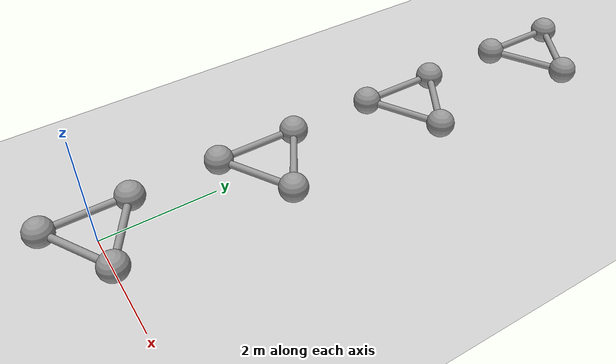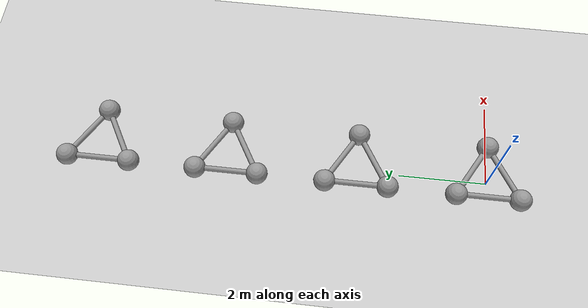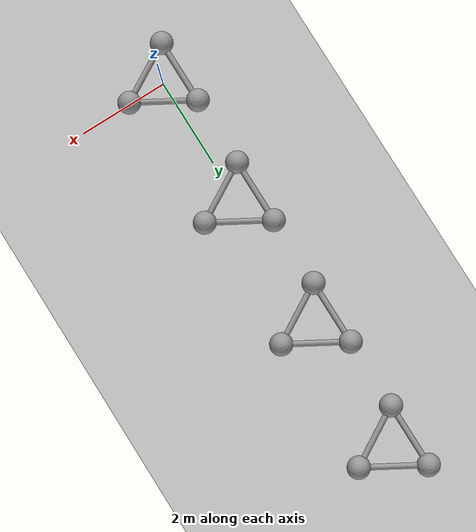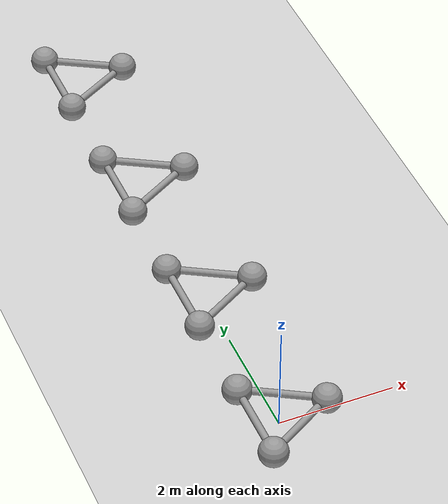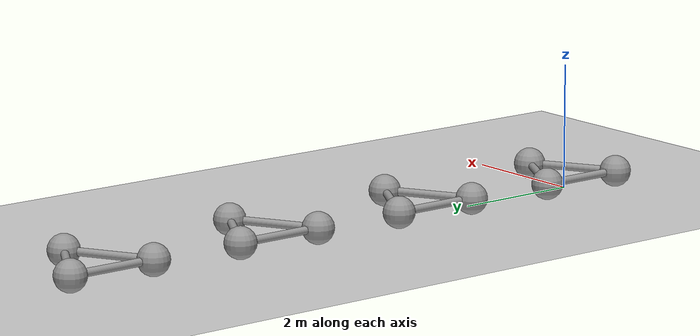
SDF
<?xml version="1.0" ?>

<sdf version="1.6">
  <world name="default">
    <gravity>1 0 -9.8</gravity>

    <include>
      <uri>model://ground_plane</uri>
    </include>
    <include>
      <uri>model://sun</uri>
    </include>

    <include>
      <uri>model://triball_lumped</uri>
      <pose>0 0 0  0 0 0</pose>
    </include>

    <include>
      <uri>model://triball_fixed</uri>
      <pose>0 3 0  0 0 0</pose>
    </include>

    <include>
      <uri>model://triball_revolute</uri>
      <pose>0 6 0  0 0 0</pose>
    </include>

    <include>
      <name>triball_wheel_slip</name>
      <uri>model://triball_revolute</uri>
      <pose>0 9 0  0 0 0</pose>
      <plugin name="wheel_slip" filename="libWheelSlipPlugin.so">
        <wheel link_name="link_a">
          <slip_compliance_lateral>1</slip_compliance_lateral>
          <slip_compliance_longitudinal>1</slip_compliance_longitudinal>
          <wheel_normal_force>25</wheel_normal_force>
        </wheel>
        <wheel link_name="link_b">
          <slip_compliance_lateral>1</slip_compliance_lateral>
          <slip_compliance_longitudinal>1</slip_compliance_longitudinal>
          <wheel_normal_force>25</wheel_normal_force>
        </wheel>
        <wheel link_name="link_c">
          <slip_compliance_lateral>1</slip_compliance_lateral>
          <slip_compliance_longitudinal>1</slip_compliance_longitudinal>
          <wheel_normal_force>25</wheel_normal_force>
        </wheel>
      </plugin>
    </include>
    <gui fullscreen='0'>
      <camera name='user_camera'>
        <pose>1.5 -4 2.5  0 0.5 1.6</pose>
        <view_controller>orbit</view_controller>
      </camera>
    </gui>
  </world>
</sdf>

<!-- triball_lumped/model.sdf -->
<sdf version="1.5">
  <model name="triball_lumped">
    <allow_auto_disable>false</allow_auto_disable>
    <link name="link">
      <pose>0 0 0.25  0 0 0</pose>
      <inertial>
        <pose>0.0 0.0 0  0 0 0</pose>
        <mass>7.911</mass>
        <inertia>
          <ixx>2.9446500000000007</ixx>
          <iyy>2.944649999999999</iyy>
          <izz>5.691525</izz>
          <ixy>0.0</ixy>
          <ixz>0.0</ixz>
          <iyz>0.0</iyz>
        </inertia>
      </inertial>
      <sensor name="imu" type="imu">
        <always_on>true</always_on>
      </sensor>

      <collision name="collision_a">
        <pose>0.8333333333333333 0 0  0 0 0</pose>
        <geometry>
          <sphere>
            <radius>0.25</radius>
          </sphere>
        </geometry>
        <surface>
          <friction>
            <ode>
              <mu>0.9</mu>
              <mu2>0.9</mu2>
              <fdir1>1 0 0</fdir1>
            </ode>
          </friction>
        </surface>
      </collision>
      <visual name="visual_a">
        <pose>0.8333333333333333 0 0  0 0 0</pose>
        <geometry>
          <sphere>
            <radius>0.25</radius>
          </sphere>
        </geometry>
        <material>
          <script>
            <uri>file://media/materials/scripts/gazebo.material</uri>
            <name>Gazebo/Grey</name>
          </script>
        </material>
      </visual>

      <collision name="collision_a_to_b">
        <pose>0.20833333333333331 0.36084391824351614 0.0  -1.5707962969925737 -1.0471975511965974 1.047197525387029</pose>
        <geometry>
          <cylinder>
            <radius>0.0625</radius>
            <length>1.4433756729740645</length>
          </cylinder>
        </geometry>
        <surface>
          <friction>
            <ode>
              <mu>0.9</mu>
              <mu2>0.9</mu2>
            </ode>
          </friction>
        </surface>
      </collision>
      <visual name="visual_a_to_b">
        <pose>0.20833333333333331 0.36084391824351614 0.0  -1.5707962969925737 -1.0471975511965974 1.047197525387029</pose>
        <geometry>
          <cylinder>
            <radius>0.0625</radius>
            <length>1.4433756729740645</length>
          </cylinder>
        </geometry>
        <material>
          <script>
            <uri>file://media/materials/scripts/gazebo.material</uri>
            <name>Gazebo/Grey</name>
          </script>
        </material>
      </visual>

      <collision name="collision_a_to_c">
        <pose>0.20833333333333331 -0.36084391824351614 0.0  1.5707962969925737 -1.0471975511965974 -1.047197525387029</pose>
        <geometry>
          <cylinder>
            <radius>0.0625</radius>
            <length>1.4433756729740645</length>
          </cylinder>
        </geometry>
        <surface>
          <friction>
            <ode>
              <mu>0.9</mu>
              <mu2>0.9</mu2>
            </ode>
          </friction>
        </surface>
      </collision>
      <visual name="visual_a_to_c">
        <pose>0.20833333333333331 -0.36084391824351614 0.0  1.5707962969925737 -1.0471975511965974 -1.047197525387029</pose>
        <geometry>
          <cylinder>
            <radius>0.0625</radius>
            <length>1.4433756729740645</length>
          </cylinder>
        </geometry>
        <material>
          <script>
            <uri>file://media/materials/scripts/gazebo.material</uri>
            <name>Gazebo/Grey</name>
          </script>
        </material>
      </visual>

      <collision name="collision_b">
        <pose>-0.41666666666666663 0.7216878364870323 0  0 0 0</pose>
        <geometry>
          <sphere>
            <radius>0.25</radius>
          </sphere>
        </geometry>
        <surface>
          <friction>
            <ode>
              <mu>0.9</mu>
              <mu2>0.9</mu2>
              <fdir1>1 0 0</fdir1>
            </ode>
          </friction>
        </surface>
      </collision>
      <visual name="visual_b">
        <pose>-0.41666666666666663 0.7216878364870323 0  0 0 0</pose>
        <geometry>
          <sphere>
            <radius>0.25</radius>
          </sphere>
        </geometry>
        <material>
          <script>
            <uri>file://media/materials/scripts/gazebo.material</uri>
            <name>Gazebo/Grey</name>
          </script>
        </material>
      </visual>

      <collision name="collision_b_to_c">
        <pose>-0.41666666666666663 0.0 0.0  1.5707963267948963 -0.0 0.0</pose>
        <geometry>
          <cylinder>
            <radius>0.0625</radius>
            <length>1.4433756729740645</length>
          </cylinder>
        </geometry>
        <surface>
          <friction>
            <ode>
              <mu>0.9</mu>
              <mu2>0.9</mu2>
            </ode>
          </friction>
        </surface>
      </collision>
      <visual name="visual_b_to_c">
        <pose>-0.41666666666666663 0.0 0.0  1.5707963267948963 -0.0 0.0</pose>
        <geometry>
          <cylinder>
            <radius>0.0625</radius>
            <length>1.4433756729740645</length>
          </cylinder>
        </geometry>
        <material>
          <script>
            <uri>file://media/materials/scripts/gazebo.material</uri>
            <name>Gazebo/Grey</name>
          </script>
        </material>
      </visual>

      <collision name="collision_c">
        <pose>-0.41666666666666663 -0.7216878364870323 0  0 0 0</pose>
        <geometry>
          <sphere>
            <radius>0.25</radius>
          </sphere>
        </geometry>
        <surface>
          <friction>
            <ode>
              <mu>0.9</mu>
              <mu2>0.9</mu2>
              <fdir1>1 0 0</fdir1>
            </ode>
          </friction>
        </surface>
      </collision>
      <visual name="visual_c">
        <pose>-0.41666666666666663 -0.7216878364870323 0  0 0 0</pose>
        <geometry>
          <sphere>
            <radius>0.25</radius>
          </sphere>
        </geometry>
        <material>
          <script>
            <uri>file://media/materials/scripts/gazebo.material</uri>
            <name>Gazebo/Grey</name>
          </script>
        </material>
      </visual>

    </link>
  </model>
</sdf>

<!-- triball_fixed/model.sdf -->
<sdf version="1.5">
  <model name="triball_fixed">
    <allow_auto_disable>false</allow_auto_disable>
    <link name="chassis">
      <pose>0 0 0.25  0 0 0</pose>
      <inertial>
        <pose>0.0 0.0 0 0 0 0</pose>
        <mass>3.9555</mass>
        <inertia>
          <ixx>1.4723250000000003</ixx>
          <iyy>1.4723249999999994</iyy>
          <izz>2.8457625</izz>
          <ixy>0.0</ixy>
          <ixz>0.0</ixz>
          <iyz>0.0</iyz>
        </inertia>
      </inertial>
      <sensor name="imu" type="imu">
        <always_on>true</always_on>
      </sensor>

      <collision name="collision_a_to_b">
        <pose>0.20833333333333331 0.36084391824351614 0.0  -1.5707962969925737 -1.0471975511965974 1.047197525387029</pose>
        <geometry>
          <cylinder>
            <radius>0.0625</radius>
            <length>1.4433756729740645</length>
          </cylinder>
        </geometry>
        <surface>
          <friction>
            <ode>
              <mu>0.9</mu>
              <mu2>0.9</mu2>
            </ode>
          </friction>
        </surface>
      </collision>
      <visual name="visual_a_to_b">
        <pose>0.20833333333333331 0.36084391824351614 0.0  -1.5707962969925737 -1.0471975511965974 1.047197525387029</pose>
        <geometry>
          <cylinder>
            <radius>0.0625</radius>
            <length>1.4433756729740645</length>
          </cylinder>
        </geometry>
        <material>
          <script>
            <uri>file://media/materials/scripts/gazebo.material</uri>
            <name>Gazebo/Grey</name>
          </script>
        </material>
      </visual>

      <collision name="collision_a_to_c">
        <pose>0.20833333333333331 -0.36084391824351614 0.0  1.5707962969925737 -1.0471975511965974 -1.047197525387029</pose>
        <geometry>
          <cylinder>
            <radius>0.0625</radius>
            <length>1.4433756729740645</length>
          </cylinder>
        </geometry>
        <surface>
          <friction>
            <ode>
              <mu>0.9</mu>
              <mu2>0.9</mu2>
            </ode>
          </friction>
        </surface>
      </collision>
      <visual name="visual_a_to_c">
        <pose>0.20833333333333331 -0.36084391824351614 0.0  1.5707962969925737 -1.0471975511965974 -1.047197525387029</pose>
        <geometry>
          <cylinder>
            <radius>0.0625</radius>
            <length>1.4433756729740645</length>
          </cylinder>
        </geometry>
        <material>
          <script>
            <uri>file://media/materials/scripts/gazebo.material</uri>
            <name>Gazebo/Grey</name>
          </script>
        </material>
      </visual>

      <collision name="collision_b_to_c">
        <pose>-0.41666666666666663 0.0 0.0  1.5707963267948963 -0.0 0.0</pose>
        <geometry>
          <cylinder>
            <radius>0.0625</radius>
            <length>1.4433756729740645</length>
          </cylinder>
        </geometry>
        <surface>
          <friction>
            <ode>
              <mu>0.9</mu>
              <mu2>0.9</mu2>
            </ode>
          </friction>
        </surface>
      </collision>
      <visual name="visual_b_to_c">
        <pose>-0.41666666666666663 0.0 0.0  1.5707963267948963 -0.0 0.0</pose>
        <geometry>
          <cylinder>
            <radius>0.0625</radius>
            <length>1.4433756729740645</length>
          </cylinder>
        </geometry>
        <material>
          <script>
            <uri>file://media/materials/scripts/gazebo.material</uri>
            <name>Gazebo/Grey</name>
          </script>
        </material>
      </visual>

    </link>

    <link name="link_a">
      <pose>0.8333333333333333 0 0.25  0 0 0</pose>
      <inertial>
        <mass>1.3185</mass>
        <inertia>
          <ixx>0.0329625</ixx>
          <iyy>0.0329625</iyy>
          <izz>0.0329625</izz>
          <ixy>0</ixy>
          <ixz>0</ixz>
          <iyz>0</iyz>
        </inertia>
      </inertial>
      <collision name="collision">
        <geometry>
          <sphere>
            <radius>0.25</radius>
          </sphere>
        </geometry>
        <surface>
          <contact>
            <ode>
              <kp>10000000.0</kp>
              <kd>1.0</kd>
            </ode>
          </contact>
          <friction>
            <ode>
              <mu>0.9</mu>
              <mu2>0.9</mu2>
              <fdir1>1 0 0</fdir1>
            </ode>
          </friction>
        </surface>
      </collision>
      <visual name="visual">
        <geometry>
          <sphere>
            <radius>0.25</radius>
          </sphere>
        </geometry>
        <material>
          <script>
            <uri>file://media/materials/scripts/gazebo.material</uri>
            <name>Gazebo/Grey</name>
          </script>
        </material>
      </visual>
    </link>
    <joint name="joint_a" type="fixed">
      <parent>chassis</parent>
      <child>link_a</child>
    </joint>

    <link name="link_b">
      <pose>-0.41666666666666663 0.7216878364870323 0.25  0 0 0</pose>
      <inertial>
        <mass>1.3185</mass>
        <inertia>
          <ixx>0.0329625</ixx>
          <iyy>0.0329625</iyy>
          <izz>0.0329625</izz>
          <ixy>0</ixy>
          <ixz>0</ixz>
          <iyz>0</iyz>
        </inertia>
      </inertial>
      <collision name="collision">
        <geometry>
          <sphere>
            <radius>0.25</radius>
          </sphere>
        </geometry>
        <surface>
          <contact>
            <ode>
              <kp>10000000.0</kp>
              <kd>1.0</kd>
            </ode>
          </contact>
          <friction>
            <ode>
              <mu>0.9</mu>
              <mu2>0.9</mu2>
              <fdir1>1 0 0</fdir1>
            </ode>
          </friction>
        </surface>
      </collision>
      <visual name="visual">
        <geometry>
          <sphere>
            <radius>0.25</radius>
          </sphere>
        </geometry>
        <material>
          <script>
            <uri>file://media/materials/scripts/gazebo.material</uri>
            <name>Gazebo/Grey</name>
          </script>
        </material>
      </visual>
    </link>
    <joint name="joint_b" type="fixed">
      <parent>chassis</parent>
      <child>link_b</child>
    </joint>

    <link name="link_c">
      <pose>-0.41666666666666663 -0.7216878364870323 0.25  0 0 0</pose>
      <inertial>
        <mass>1.3185</mass>
        <inertia>
          <ixx>0.0329625</ixx>
          <iyy>0.0329625</iyy>
          <izz>0.0329625</izz>
          <ixy>0</ixy>
          <ixz>0</ixz>
          <iyz>0</iyz>
        </inertia>
      </inertial>
      <collision name="collision">
        <geometry>
          <sphere>
            <radius>0.25</radius>
          </sphere>
        </geometry>
        <surface>
          <contact>
            <ode>
              <kp>10000000.0</kp>
              <kd>1.0</kd>
            </ode>
          </contact>
          <friction>
            <ode>
              <mu>0.9</mu>
              <mu2>0.9</mu2>
              <fdir1>1 0 0</fdir1>
            </ode>
          </friction>
        </surface>
      </collision>
      <visual name="visual">
        <geometry>
          <sphere>
            <radius>0.25</radius>
          </sphere>
        </geometry>
        <material>
          <script>
            <uri>file://media/materials/scripts/gazebo.material</uri>
            <name>Gazebo/Grey</name>
          </script>
        </material>
      </visual>
    </link>
    <joint name="joint_c" type="fixed">
      <parent>chassis</parent>
      <child>link_c</child>
    </joint>

  </model>
</sdf>

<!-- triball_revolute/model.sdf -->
<sdf version="1.5">
  <model name="triball_revolute">
    <allow_auto_disable>false</allow_auto_disable>
    <link name="chassis">
      <pose>0 0 0.25  0 0 0</pose>
      <inertial>
        <pose>0.0 0.0 0 0 0 0</pose>
        <mass>3.9555</mass>
        <inertia>
          <ixx>1.4723250000000003</ixx>
          <iyy>1.4723249999999994</iyy>
          <izz>2.8457625</izz>
          <ixy>0.0</ixy>
          <ixz>0.0</ixz>
          <iyz>0.0</iyz>
        </inertia>
      </inertial>
      <sensor name="imu" type="imu">
        <always_on>true</always_on>
      </sensor>

      <collision name="collision_a_to_b">
        <pose>0.20833333333333331 0.36084391824351614 0.0  -1.5707962969925737 -1.0471975511965974 1.047197525387029</pose>
        <geometry>
          <cylinder>
            <radius>0.0625</radius>
            <length>1.4433756729740645</length>
          </cylinder>
        </geometry>
        <surface>
          <friction>
            <ode>
              <mu>0.9</mu>
              <mu2>0.9</mu2>
            </ode>
          </friction>
        </surface>
      </collision>
      <visual name="visual_a_to_b">
        <pose>0.20833333333333331 0.36084391824351614 0.0  -1.5707962969925737 -1.0471975511965974 1.047197525387029</pose>
        <geometry>
          <cylinder>
            <radius>0.0625</radius>
            <length>1.4433756729740645</length>
          </cylinder>
        </geometry>
        <material>
          <script>
            <uri>file://media/materials/scripts/gazebo.material</uri>
            <name>Gazebo/Grey</name>
          </script>
        </material>
      </visual>

      <collision name="collision_a_to_c">
        <pose>0.20833333333333331 -0.36084391824351614 0.0  1.5707962969925737 -1.0471975511965974 -1.047197525387029</pose>
        <geometry>
          <cylinder>
            <radius>0.0625</radius>
            <length>1.4433756729740645</length>
          </cylinder>
        </geometry>
        <surface>
          <friction>
            <ode>
              <mu>0.9</mu>
              <mu2>0.9</mu2>
            </ode>
          </friction>
        </surface>
      </collision>
      <visual name="visual_a_to_c">
        <pose>0.20833333333333331 -0.36084391824351614 0.0  1.5707962969925737 -1.0471975511965974 -1.047197525387029</pose>
        <geometry>
          <cylinder>
            <radius>0.0625</radius>
            <length>1.4433756729740645</length>
          </cylinder>
        </geometry>
        <material>
          <script>
            <uri>file://media/materials/scripts/gazebo.material</uri>
            <name>Gazebo/Grey</name>
          </script>
        </material>
      </visual>

      <collision name="collision_b_to_c">
        <pose>-0.41666666666666663 0.0 0.0  1.5707963267948963 -0.0 0.0</pose>
        <geometry>
          <cylinder>
            <radius>0.0625</radius>
            <length>1.4433756729740645</length>
          </cylinder>
        </geometry>
        <surface>
          <friction>
            <ode>
              <mu>0.9</mu>
              <mu2>0.9</mu2>
            </ode>
          </friction>
        </surface>
      </collision>
      <visual name="visual_b_to_c">
        <pose>-0.41666666666666663 0.0 0.0  1.5707963267948963 -0.0 0.0</pose>
        <geometry>
          <cylinder>
            <radius>0.0625</radius>
            <length>1.4433756729740645</length>
          </cylinder>
        </geometry>
        <material>
          <script>
            <uri>file://media/materials/scripts/gazebo.material</uri>
            <name>Gazebo/Grey</name>
          </script>
        </material>
      </visual>

    </link>

    <link name="link_a">
      <pose>0.8333333333333333 0 0.25  0 0 0</pose>
      <inertial>
        <mass>1.3185</mass>
        <inertia>
          <ixx>0.0329625</ixx>
          <iyy>0.0329625</iyy>
          <izz>0.0329625</izz>
          <ixy>0</ixy>
          <ixz>0</ixz>
          <iyz>0</iyz>
        </inertia>
      </inertial>
      <collision name="collision">
        <geometry>
          <sphere>
            <radius>0.25</radius>
          </sphere>
        </geometry>
        <surface>
          <contact>
            <ode>
              <kp>10000000.0</kp>
              <kd>1.0</kd>
            </ode>
          </contact>
          <friction>
            <ode>
              <mu>0.9</mu>
              <mu2>0.9</mu2>
              <fdir1>0 1 0</fdir1>
            </ode>
          </friction>
        </surface>
      </collision>
      <visual name="visual">
        <geometry>
          <sphere>
            <radius>0.25</radius>
          </sphere>
        </geometry>
        <material>
          <script>
            <uri>file://media/materials/scripts/gazebo.material</uri>
            <name>Gazebo/Grey</name>
          </script>
        </material>
      </visual>
    </link>
    <joint name="joint_a" type="revolute">
      <parent>chassis</parent>
      <child>link_a</child>
      <axis>
        <xyz>0 1 0</xyz>
        <dynamics>
          <friction>1.0</friction>
        </dynamics>
      </axis>
    </joint>

    <link name="link_b">
      <pose>-0.41666666666666663 0.7216878364870323 0.25  0 0 0</pose>
      <inertial>
        <mass>1.3185</mass>
        <inertia>
          <ixx>0.0329625</ixx>
          <iyy>0.0329625</iyy>
          <izz>0.0329625</izz>
          <ixy>0</ixy>
          <ixz>0</ixz>
          <iyz>0</iyz>
        </inertia>
      </inertial>
      <collision name="collision">
        <geometry>
          <sphere>
            <radius>0.25</radius>
          </sphere>
        </geometry>
        <surface>
          <contact>
            <ode>
              <kp>10000000.0</kp>
              <kd>1.0</kd>
            </ode>
          </contact>
          <friction>
            <ode>
              <mu>0.9</mu>
              <mu2>0.9</mu2>
              <fdir1>0 1 0</fdir1>
            </ode>
          </friction>
        </surface>
      </collision>
      <visual name="visual">
        <geometry>
          <sphere>
            <radius>0.25</radius>
          </sphere>
        </geometry>
        <material>
          <script>
            <uri>file://media/materials/scripts/gazebo.material</uri>
            <name>Gazebo/Grey</name>
          </script>
        </material>
      </visual>
    </link>
    <joint name="joint_b" type="revolute">
      <parent>chassis</parent>
      <child>link_b</child>
      <axis>
        <xyz>0 1 0</xyz>
        <dynamics>
          <friction>1.0</friction>
        </dynamics>
      </axis>
    </joint>

    <link name="link_c">
      <pose>-0.41666666666666663 -0.7216878364870323 0.25  0 0 0</pose>
      <inertial>
        <mass>1.3185</mass>
        <inertia>
          <ixx>0.0329625</ixx>
          <iyy>0.0329625</iyy>
          <izz>0.0329625</izz>
          <ixy>0</ixy>
          <ixz>0</ixz>
          <iyz>0</iyz>
        </inertia>
      </inertial>
      <collision name="collision">
        <geometry>
          <sphere>
            <radius>0.25</radius>
          </sphere>
        </geometry>
        <surface>
          <contact>
            <ode>
              <kp>10000000.0</kp>
              <kd>1.0</kd>
            </ode>
          </contact>
          <friction>
            <ode>
              <mu>0.9</mu>
              <mu2>0.9</mu2>
              <fdir1>0 1 0</fdir1>
            </ode>
          </friction>
        </surface>
      </collision>
      <visual name="visual">
        <geometry>
          <sphere>
            <radius>0.25</radius>
          </sphere>
        </geometry>
        <material>
          <script>
            <uri>file://media/materials/scripts/gazebo.material</uri>
            <name>Gazebo/Grey</name>
          </script>
        </material>
      </visual>
    </link>
    <joint name="joint_c" type="revolute">
      <parent>chassis</parent>
      <child>link_c</child>
      <axis>
        <xyz>0 1 0</xyz>
        <dynamics>
          <friction>1.0</friction>
        </dynamics>
      </axis>
    </joint>

  </model>
</sdf>
